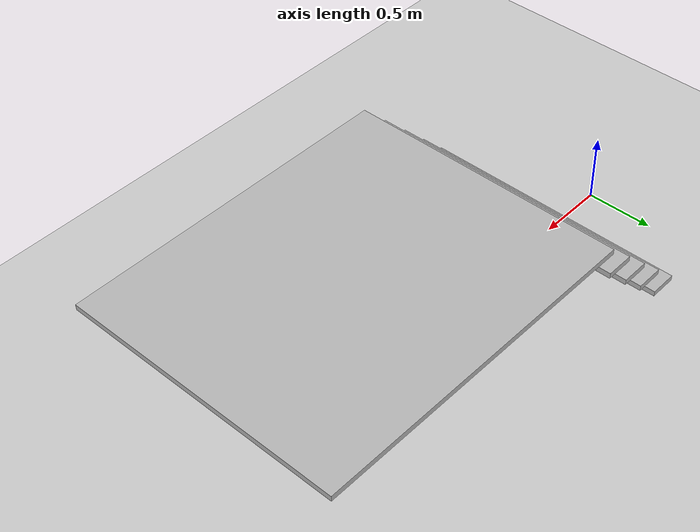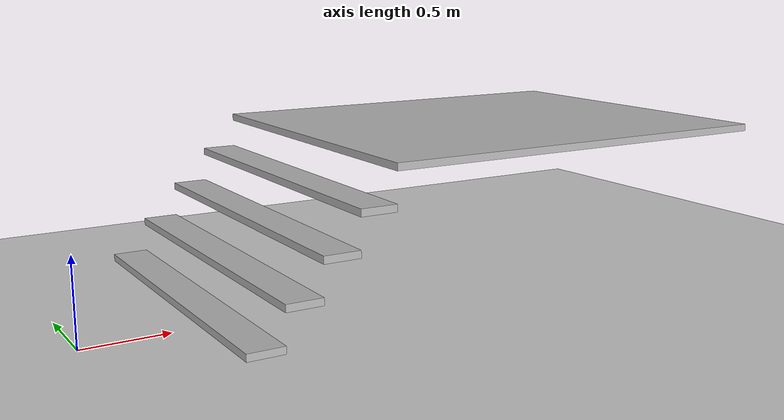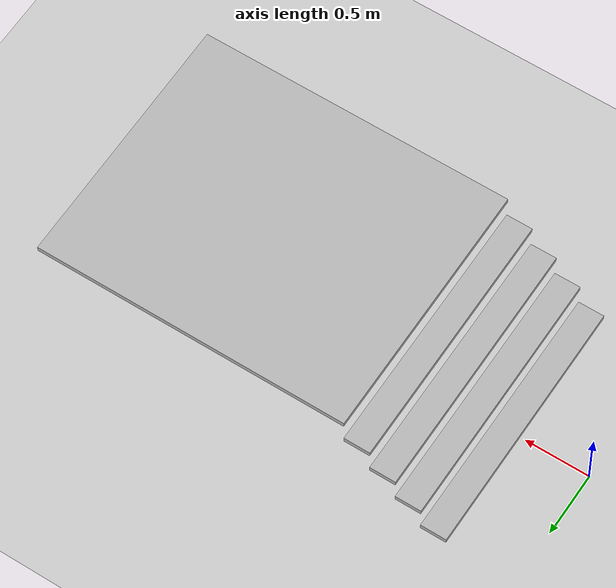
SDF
<?xml version="1.0" ?>
<sdf version="1.4">
  <world name="default">
    <include>
      <uri>model://ground_plane</uri>
    </include>
    <include>
      <uri>model://sun</uri>
    </include>
    <include>
      <uri>model://sandbox_data/models/stairs_200x200</uri>
      <pose>0.5 0 0 0 0 0</pose>
      <static>true</static>
    </include>
    <physics type="ode">
      <gravity>0 0 -9.81</gravity>
    </physics>
  </world>
</sdf>

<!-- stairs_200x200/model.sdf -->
<sdf version='1.4'>
  <model name="stairs_200x200">
    <static>true</static>
    <pose>0 0 0 0 0 0</pose>

    <link name='step_1'>
      <pose>0.1 0 0.18 0 0 0</pose>
      <collision name='collision'>
        <geometry>
          <box>
            <size>0.2 2.0 0.04</size>
          </box>
        </geometry>
      </collision>
      <visual name='visual'>
        <geometry>
          <box>
            <size>0.2 2.0 0.04</size>
          </box>
        </geometry>
      </visual>
    </link>

    <link name='step_2'>
      <pose>0.3 0 0.38 0 0 0</pose>
      <collision name='collision'>
        <geometry>
          <box>
            <size>0.2 2.0 0.04</size>
          </box>
        </geometry>
      </collision>
      <visual name='visual'>
        <geometry>
          <box>
            <size>0.2 2.0 0.04</size>
          </box>
        </geometry>
      </visual>
    </link>

    <link name='step_3'>
      <pose>0.5 0 0.58 0 0 0</pose>
      <collision name='collision'>
        <geometry>
          <box>
            <size>0.2 2.0 0.04</size>
          </box>
        </geometry>
      </collision>
      <visual name='visual'>
        <geometry>
          <box>
            <size>0.2 2.0 0.04</size>
          </box>
        </geometry>
      </visual>
    </link>

    <link name='step_4'>
      <pose>0.7 0 0.78 0 0 0</pose>
      <collision name='collision'>
        <geometry>
          <box>
            <size>0.2 2.0 0.04</size>
          </box>
        </geometry>
      </collision>
      <visual name='visual'>
        <geometry>
          <box>
            <size>0.2 2.0 0.04</size>
          </box>
        </geometry>
      </visual>
    </link>

    <link name='top'>
      <pose>2.0 0 0.98 0 0 0</pose>
      <collision name='collision'>
        <geometry>
          <box>
            <size>2.4 2.0 0.04</size>
          </box>
        </geometry>
      </collision>
      <visual name='visual'>
        <geometry>
          <box>
            <size>2.4 2.0 0.04</size>
          </box>
        </geometry>
      </visual>
    </link>

  </model>
</sdf>
